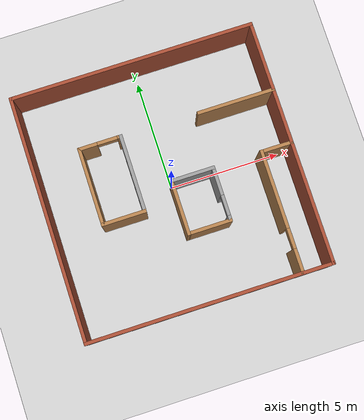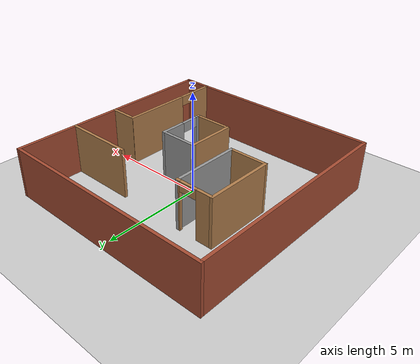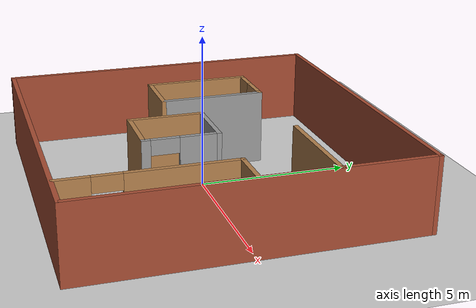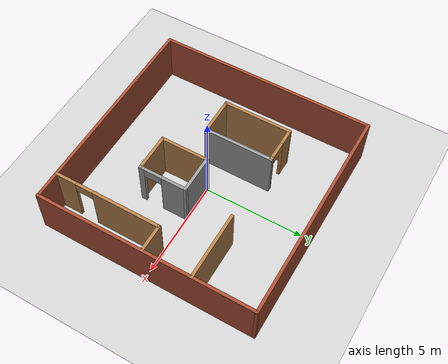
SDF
<sdf version="1.7">
 <world name="default">
  <light name="sun" type="directional">
   <pose>0 0 10 0 -0 0</pose>
   <diffuse>0.8 0.8 0.8 1</diffuse>
   <specular>0.2 0.2 0.2 1</specular>
   <attenuation>
    <range>1000</range>
    <constant>0.9</constant>
    <linear>0.01</linear>
    <quadratic>0.001</quadratic>
   </attenuation>
   <direction>-0.5 0.1 -0.9</direction>
   <spot><inner_angle>0</inner_angle><outer_angle>0</outer_angle><falloff>0</falloff></spot>
  </light>
  <model name="ground_plane">
   <static>1</static>
   <link name="link">
    <collision name="collision">
     <geometry><plane><normal>0 0 1</normal><size>100 100</size></plane></geometry>
     <surface>
      <contact><collide_bitmask>65535</collide_bitmask></contact>
      <friction><ode><mu>100</mu><mu2>50</mu2></ode></friction>
     </surface>
    </collision>
    <visual name="visual">
     <cast_shadows>0</cast_shadows>
     <geometry><plane><normal>0 0 1</normal><size>100 100</size></plane></geometry>
     <material>
      <script><uri>file://media/materials/scripts/gazebo.material</uri><name>Gazebo/Grey</name></script>
     </material>
    </visual>
   </link>
  </model>
  <gravity>0 0 -9.8</gravity>
  <magnetic_field>6e-06 2.3e-05 -4.2e-05</magnetic_field>
  <atmosphere type="adiabatic"/>
  <physics type="ode">
   <max_step_size>0.001</max_step_size>
   <real_time_factor>1</real_time_factor>
   <real_time_update_rate>1000</real_time_update_rate>
  </physics>
  <scene><ambient>0.4 0.4 0.4 1</ambient><background>0.7 0.7 0.7 1</background><shadows>1</shadows></scene>
  <spherical_coordinates>
   <surface_model>EARTH_WGS84</surface_model>
   <latitude_deg>0</latitude_deg>
   <longitude_deg>0</longitude_deg>
   <elevation>0</elevation>
   <heading_deg>0</heading_deg>
  </spherical_coordinates>
  <model name="Untitled">
   <pose>-0.04914 0.024114 0 0 -0 0</pose>
   <link name="Wall_0">
    <collision name="Wall_0_Collision">
     <geometry><box><size>11 0.15 2.5</size></box></geometry>
     <pose>0 0 1.25 0 -0 0</pose>
    </collision>
    <visual name="Wall_0_Visual">
     <pose>0 0 1.25 0 -0 0</pose>
     <geometry><box><size>11 0.15 2.5</size></box></geometry>
     <material>
      <script><uri>file://media/materials/scripts/gazebo.material</uri><name>Gazebo/Bricks</name></script>
      <ambient>1 1 1 1</ambient>
     </material>
     <meta><layer>0</layer></meta>
    </visual>
    <pose>0 -5.43756 0 0 -0 3.14159</pose>
   </link>
   <link name="Wall_11">
    <pose>4.08256 -2.70683 0 0 -0 1.5708</pose>
    <visual name="Wall_11_Visual_0">
     <pose>-2.20456 0 1.25 0 -0 0</pose>
     <geometry><box><size>1.09089 0.15 2.5</size></box></geometry>
     <material>
      <script><uri>file://media/materials/scripts/gazebo.material</uri><name>Gazebo/Wood</name></script>
      <ambient>1 1 1 1</ambient>
     </material>
     <meta><layer>0</layer></meta>
    </visual>
    <collision name="Wall_11_Collision_0">
     <geometry><box><size>1.09089 0.15 2.5</size></box></geometry>
     <pose>-2.20456 0 1.25 0 -0 0</pose>
    </collision>
    <visual name="Wall_11_Visual_1">
     <pose>0.995445 0 1.25 0 -0 0</pose>
     <geometry><box><size>3.50911 0.15 2.5</size></box></geometry>
     <material>
      <script><uri>file://media/materials/scripts/gazebo.material</uri><name>Gazebo/Wood</name></script>
      <ambient>1 1 1 1</ambient>
     </material>
     <meta><layer>0</layer></meta>
    </visual>
    <collision name="Wall_11_Collision_1">
     <geometry><box><size>3.50911 0.15 2.5</size></box></geometry>
     <pose>0.995445 0 1.25 0 -0 0</pose>
    </collision>
    <visual name="Wall_11_Visual_2">
     <pose>-1.20911 0 2.25 0 -0 0</pose>
     <geometry><box><size>0.9 0.15 0.5</size></box></geometry>
     <material>
      <script><uri>file://media/materials/scripts/gazebo.material</uri><name>Gazebo/Wood</name></script>
      <ambient>1 1 1 1</ambient>
     </material>
     <meta><layer>0</layer></meta>
    </visual>
    <collision name="Wall_11_Collision_2">
     <geometry><box><size>0.9 0.15 0.5</size></box></geometry>
     <pose>-1.20911 0 2.25 0 -0 0</pose>
    </collision>
   </link>
   <link name="Wall_12">
    <collision name="Wall_12_Collision">
     <geometry><box><size>1.46502 0.15 2.5</size></box></geometry>
     <pose>0 0 1.25 0 -0 0</pose>
    </collision>
    <visual name="Wall_12_Visual">
     <pose>0 0 1.25 0 -0 0</pose>
     <geometry><box><size>1.46502 0.15 2.5</size></box></geometry>
     <material>
      <script><uri>file://media/materials/scripts/gazebo.material</uri><name>Gazebo/Wood</name></script>
      <ambient>1 1 1 1</ambient>
     </material>
     <meta><layer>0</layer></meta>
    </visual>
    <pose>4.75756 -0.031826 0 0 -0 0</pose>
   </link>
   <link name="Wall_14">
    <collision name="Wall_14_Collision">
     <geometry><box><size>2 0.15 2.5</size></box></geometry>
     <pose>0 0 1.25 0 -0 0</pose>
    </collision>
    <visual name="Wall_14_Visual">
     <pose>0 0 1.25 0 -0 0</pose>
     <geometry><box><size>2 0.15 2.5</size></box></geometry>
     <material>
      <script><uri>file://media/materials/scripts/gazebo.material</uri><name>Gazebo/Grey</name></script>
      <ambient>1 1 1 1</ambient>
     </material>
     <meta><layer>0</layer></meta>
    </visual>
    <pose>0.972032 -0.052172 0 0 -0 3.14159</pose>
   </link>
   <link name="Wall_15">
    <collision name="Wall_15_Collision">
     <geometry><box><size>2.5 0.15 2.5</size></box></geometry>
     <pose>0 0 1.25 0 -0 0</pose>
    </collision>
    <visual name="Wall_15_Visual">
     <pose>0 0 1.25 0 -0 0</pose>
     <geometry><box><size>2.5 0.15 2.5</size></box></geometry>
     <material>
      <script><uri>file://media/materials/scripts/gazebo.material</uri><name>Gazebo/Wood</name></script>
      <ambient>1 1 1 1</ambient>
     </material>
     <meta><layer>0</layer></meta>
    </visual>
    <pose>0.047032 -1.22717 0 0 -0 -1.5708</pose>
   </link>
   <link name="Wall_16">
    <collision name="Wall_16_Collision">
     <geometry><box><size>2 0.15 2.5</size></box></geometry>
     <pose>0 0 1.25 0 -0 0</pose>
    </collision>
    <visual name="Wall_16_Visual">
     <pose>0 0 1.25 0 -0 0</pose>
     <geometry><box><size>2 0.15 2.5</size></box></geometry>
     <material>
      <script><uri>file://media/materials/scripts/gazebo.material</uri><name>Gazebo/Wood</name></script>
      <ambient>1 1 1 1</ambient>
     </material>
     <meta><layer>0</layer></meta>
    </visual>
    <pose>0.972032 -2.40217 0 0 -0 0</pose>
   </link>
   <link name="Wall_17">
    <pose>1.89703 -1.22717 0 0 -0 1.5708</pose>
    <visual name="Wall_17_Visual_0">
     <pose>-1.10377 0 1.25 0 -0 0</pose>
     <geometry><box><size>0.292452 0.15 2.5</size></box></geometry>
     <material>
      <script><uri>file://media/materials/scripts/gazebo.material</uri><name>Gazebo/Grey</name></script>
      <ambient>1 1 1 1</ambient>
     </material>
     <meta><layer>0</layer></meta>
    </visual>
    <collision name="Wall_17_Collision_0">
     <geometry><box><size>0.292452 0.15 2.5</size></box></geometry>
     <pose>-1.10377 0 1.25 0 -0 0</pose>
    </collision>
    <visual name="Wall_17_Visual_1">
     <pose>0.596226 0 1.25 0 -0 0</pose>
     <geometry><box><size>1.30755 0.15 2.5</size></box></geometry>
     <material>
      <script><uri>file://media/materials/scripts/gazebo.material</uri><name>Gazebo/Grey</name></script>
      <ambient>1 1 1 1</ambient>
     </material>
     <meta><layer>0</layer></meta>
    </visual>
    <collision name="Wall_17_Collision_1">
     <geometry><box><size>1.30755 0.15 2.5</size></box></geometry>
     <pose>0.596226 0 1.25 0 -0 0</pose>
    </collision>
    <visual name="Wall_17_Visual_2">
     <pose>-0.507548 0 2.25 0 -0 0</pose>
     <geometry><box><size>0.9 0.15 0.5</size></box></geometry>
     <material>
      <script><uri>file://media/materials/scripts/gazebo.material</uri><name>Gazebo/Grey</name></script>
      <ambient>1 1 1 1</ambient>
     </material>
     <meta><layer>0</layer></meta>
    </visual>
    <collision name="Wall_17_Collision_2">
     <geometry><box><size>0.9 0.15 0.5</size></box></geometry>
     <pose>-0.507548 0 2.25 0 -0 0</pose>
    </collision>
   </link>
   <link name="Wall_19">
    <collision name="Wall_19_Collision">
     <geometry><box><size>2 0.15 2.5</size></box></geometry>
     <pose>0 0 1.25 0 -0 0</pose>
    </collision>
    <visual name="Wall_19_Visual">
     <pose>0 0 1.25 0 -0 0</pose>
     <geometry><box><size>2 0.15 2.5</size></box></geometry>
     <material>
      <script><uri>file://media/materials/scripts/gazebo.material</uri><name>Gazebo/Wood</name></script>
      <ambient>1 1 1 1</ambient>
     </material>
     <meta><layer>0</layer></meta>
    </visual>
    <pose>-2.3512 -0.928068 0 0 -0 3.14159</pose>
   </link>
   <link name="Wall_20">
    <collision name="Wall_20_Collision">
     <geometry><box><size>3.5 0.15 2.5</size></box></geometry>
     <pose>0 0 1.25 0 -0 0</pose>
    </collision>
    <visual name="Wall_20_Visual">
     <pose>0 0 1.25 0 -0 0</pose>
     <geometry><box><size>3.5 0.15 2.5</size></box></geometry>
     <material>
      <script><uri>file://media/materials/scripts/gazebo.material</uri><name>Gazebo/Wood</name></script>
      <ambient>1 1 1 1</ambient>
     </material>
     <meta><layer>0</layer></meta>
    </visual>
    <pose>-3.2762 0.767045 0 0 -0 1.5708</pose>
   </link>
   <link name="Wall_21">
    <pose>-2.3512 2.44204 0 0 -0 0</pose>
    <visual name="Wall_21_Visual_0">
     <pose>-0.565554 0 1.25 0 -0 0</pose>
     <geometry><box><size>0.868893 0.15 2.5</size></box></geometry>
     <material>
      <script><uri>file://media/materials/scripts/gazebo.material</uri><name>Gazebo/Wood</name></script>
      <ambient>1 1 1 1</ambient>
     </material>
     <meta><layer>0</layer></meta>
    </visual>
    <collision name="Wall_21_Collision_0">
     <geometry><box><size>0.868893 0.15 2.5</size></box></geometry>
     <pose>-0.565554 0 1.25 0 -0 0</pose>
    </collision>
    <visual name="Wall_21_Visual_1">
     <pose>0.884446 0 1.25 0 -0 0</pose>
     <geometry><box><size>0.231107 0.15 2.5</size></box></geometry>
     <material>
      <script><uri>file://media/materials/scripts/gazebo.material</uri><name>Gazebo/Wood</name></script>
      <ambient>1 1 1 1</ambient>
     </material>
     <meta><layer>0</layer></meta>
    </visual>
    <collision name="Wall_21_Collision_1">
     <geometry><box><size>0.231107 0.15 2.5</size></box></geometry>
     <pose>0.884446 0 1.25 0 -0 0</pose>
    </collision>
    <visual name="Wall_21_Visual_2">
     <pose>0.318893 0 2.25 0 -0 0</pose>
     <geometry><box><size>0.9 0.15 0.5</size></box></geometry>
     <material>
      <script><uri>file://media/materials/scripts/gazebo.material</uri><name>Gazebo/Wood</name></script>
      <ambient>1 1 1 1</ambient>
     </material>
     <meta><layer>0</layer></meta>
    </visual>
    <collision name="Wall_21_Collision_2">
     <geometry><box><size>0.9 0.15 0.5</size></box></geometry>
     <pose>0.318893 0 2.25 0 -0 0</pose>
    </collision>
   </link>
   <link name="Wall_22">
    <collision name="Wall_22_Collision">
     <geometry><box><size>3.5 0.15 2.5</size></box></geometry>
     <pose>0 0 1.25 0 -0 0</pose>
    </collision>
    <visual name="Wall_22_Visual">
     <pose>0 0 1.25 0 -0 0</pose>
     <geometry><box><size>3.5 0.15 2.5</size></box></geometry>
     <material>
      <script><uri>file://media/materials/scripts/gazebo.material</uri><name>Gazebo/Grey</name></script>
      <ambient>1 1 1 1</ambient>
     </material>
     <meta><layer>0</layer></meta>
    </visual>
    <pose>-1.4262 0.767045 0 0 -0 -1.5708</pose>
   </link>
   <link name="Wall_24">
    <collision name="Wall_24_Collision">
     <geometry><box><size>3.5 0.15 2.5</size></box></geometry>
     <pose>0 0 1.25 0 -0 0</pose>
    </collision>
    <visual name="Wall_24_Visual">
     <pose>0 0 1.25 0 -0 0</pose>
     <geometry><box><size>3.5 0.15 2.5</size></box></geometry>
     <material>
      <script><uri>file://media/materials/scripts/gazebo.material</uri><name>Gazebo/Wood</name></script>
      <ambient>1 1 1 1</ambient>
     </material>
     <meta><layer>0</layer></meta>
    </visual>
    <pose>3.73741 2.39067 0 0 -0 3.14159</pose>
   </link>
   <link name="Wall_5">
    <collision name="Wall_5_Collision">
     <geometry><box><size>11.0251 0.15 2.5</size></box></geometry>
     <pose>0 0 1.25 0 -0 0</pose>
    </collision>
    <visual name="Wall_5_Visual">
     <pose>0 0 1.25 0 -0 0</pose>
     <geometry><box><size>11.0251 0.15 2.5</size></box></geometry>
     <material>
      <script><uri>file://media/materials/scripts/gazebo.material</uri><name>Gazebo/Bricks</name></script>
      <ambient>1 1 1 1</ambient>
     </material>
     <meta><layer>0</layer></meta>
    </visual>
    <pose>5.425 0 0 0 -0 1.5708</pose>
   </link>
   <link name="Wall_6">
    <collision name="Wall_6_Collision">
     <geometry><box><size>11 0.15 2.5</size></box></geometry>
     <pose>0 0 1.25 0 -0 0</pose>
    </collision>
    <visual name="Wall_6_Visual">
     <pose>0 0 1.25 0 -0 0</pose>
     <geometry><box><size>11 0.15 2.5</size></box></geometry>
     <material>
      <script><uri>file://media/materials/scripts/gazebo.material</uri><name>Gazebo/Bricks</name></script>
      <ambient>1 1 1 1</ambient>
     </material>
     <meta><layer>0</layer></meta>
    </visual>
    <pose>0 5.43756 0 0 -0 3.14159</pose>
   </link>
   <link name="Wall_7">
    <collision name="Wall_7_Collision">
     <geometry><box><size>11.0251 0.15 2.5</size></box></geometry>
     <pose>0 0 1.25 0 -0 0</pose>
    </collision>
    <visual name="Wall_7_Visual">
     <pose>0 0 1.25 0 -0 0</pose>
     <geometry><box><size>11.0251 0.15 2.5</size></box></geometry>
     <material>
      <script><uri>file://media/materials/scripts/gazebo.material</uri><name>Gazebo/Bricks</name></script>
      <ambient>1 1 1 1</ambient>
     </material>
     <meta><layer>0</layer></meta>
    </visual>
    <pose>-5.425 0 0 0 -0 -1.5708</pose>
   </link>
   <static>1</static>
  </model>
  <plugin name="ActorPosesPlugin" filename="libActorPosesPlugin.so"/>
 </world>
</sdf>
